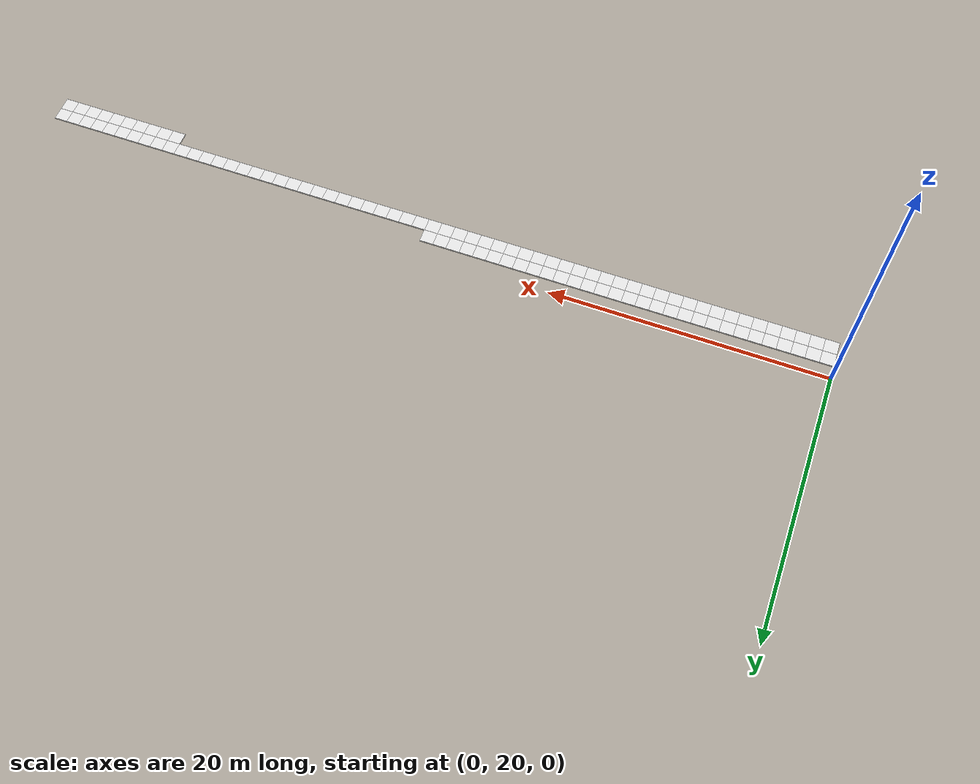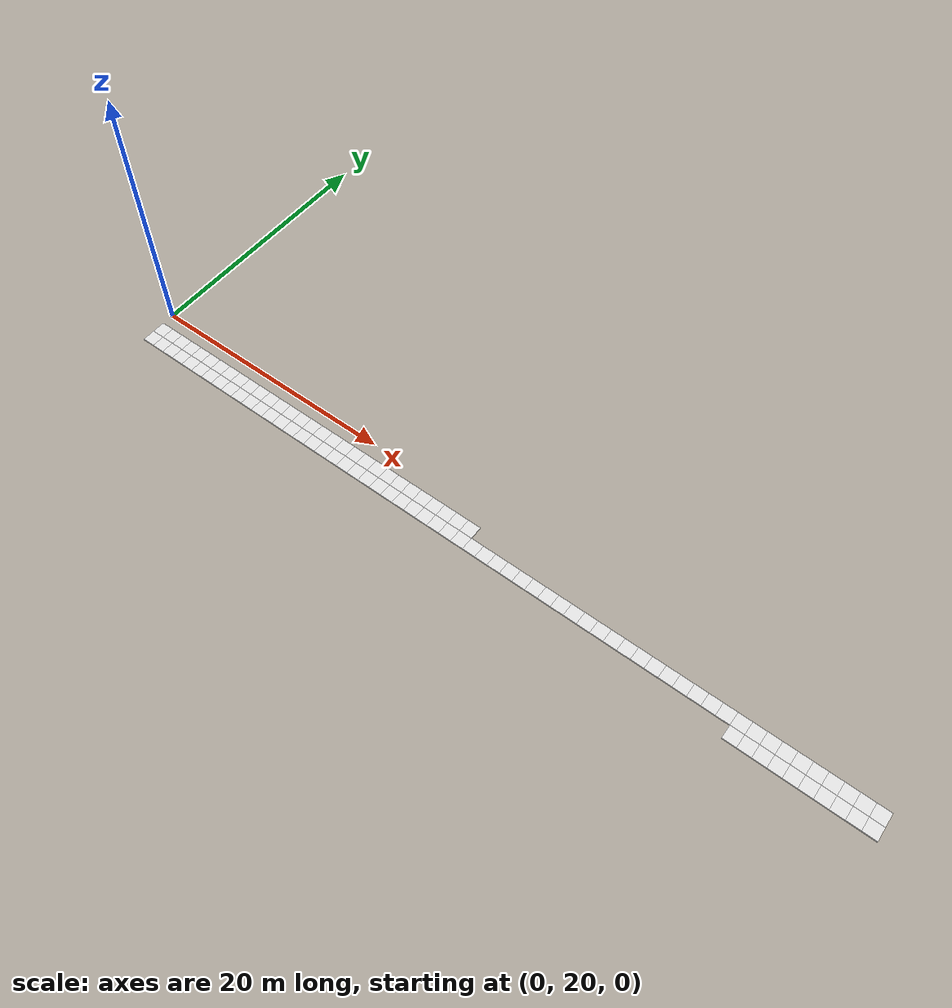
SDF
<sdf version="1.6">
 <world name="grid_world">
  <model name="cell_50_16">
   <static>true</static>
   <link name="link">
    <collision name="collision"><geometry><box><size>1 1 0.1</size></box></geometry></collision>
    <visual name="visual">
     <geometry><box><size>1 1 0.1</size></box></geometry>
     <material>
      <script><uri>file://media/materials/scripts/gazebo.material</uri><name>Gazebo/White</name></script>
     </material>
    </visual>
    <pose>50.5 16.5 0.05 0 0 0</pose>
   </link>
  </model>
  <model name="cell_51_16">
   <static>true</static>
   <link name="link">
    <collision name="collision"><geometry><box><size>1 1 0.1</size></box></geometry></collision>
    <visual name="visual">
     <geometry><box><size>1 1 0.1</size></box></geometry>
     <material>
      <script><uri>file://media/materials/scripts/gazebo.material</uri><name>Gazebo/White</name></script>
     </material>
    </visual>
    <pose>51.5 16.5 0.05 0 0 0</pose>
   </link>
  </model>
  <model name="cell_52_16">
   <static>true</static>
   <link name="link">
    <collision name="collision"><geometry><box><size>1 1 0.1</size></box></geometry></collision>
    <visual name="visual">
     <geometry><box><size>1 1 0.1</size></box></geometry>
     <material>
      <script><uri>file://media/materials/scripts/gazebo.material</uri><name>Gazebo/White</name></script>
     </material>
    </visual>
    <pose>52.5 16.5 0.05 0 0 0</pose>
   </link>
  </model>
  <model name="cell_53_16">
   <static>true</static>
   <link name="link">
    <collision name="collision"><geometry><box><size>1 1 0.1</size></box></geometry></collision>
    <visual name="visual">
     <geometry><box><size>1 1 0.1</size></box></geometry>
     <material>
      <script><uri>file://media/materials/scripts/gazebo.material</uri><name>Gazebo/White</name></script>
     </material>
    </visual>
    <pose>53.5 16.5 0.05 0 0 0</pose>
   </link>
  </model>
  <model name="cell_54_16">
   <static>true</static>
   <link name="link">
    <collision name="collision"><geometry><box><size>1 1 0.1</size></box></geometry></collision>
    <visual name="visual">
     <geometry><box><size>1 1 0.1</size></box></geometry>
     <material>
      <script><uri>file://media/materials/scripts/gazebo.material</uri><name>Gazebo/White</name></script>
     </material>
    </visual>
    <pose>54.5 16.5 0.05 0 0 0</pose>
   </link>
  </model>
  <model name="cell_55_16">
   <static>true</static>
   <link name="link">
    <collision name="collision"><geometry><box><size>1 1 0.1</size></box></geometry></collision>
    <visual name="visual">
     <geometry><box><size>1 1 0.1</size></box></geometry>
     <material>
      <script><uri>file://media/materials/scripts/gazebo.material</uri><name>Gazebo/White</name></script>
     </material>
    </visual>
    <pose>55.5 16.5 0.05 0 0 0</pose>
   </link>
  </model>
  <model name="cell_56_16">
   <static>true</static>
   <link name="link">
    <collision name="collision"><geometry><box><size>1 1 0.1</size></box></geometry></collision>
    <visual name="visual">
     <geometry><box><size>1 1 0.1</size></box></geometry>
     <material>
      <script><uri>file://media/materials/scripts/gazebo.material</uri><name>Gazebo/White</name></script>
     </material>
    </visual>
    <pose>56.5 16.5 0.05 0 0 0</pose>
   </link>
  </model>
  <model name="cell_57_16">
   <static>true</static>
   <link name="link">
    <collision name="collision"><geometry><box><size>1 1 0.1</size></box></geometry></collision>
    <visual name="visual">
     <geometry><box><size>1 1 0.1</size></box></geometry>
     <material>
      <script><uri>file://media/materials/scripts/gazebo.material</uri><name>Gazebo/White</name></script>
     </material>
    </visual>
    <pose>57.5 16.5 0.05 0 0 0</pose>
   </link>
  </model>
  <model name="cell_58_16">
   <static>true</static>
   <link name="link">
    <collision name="collision"><geometry><box><size>1 1 0.1</size></box></geometry></collision>
    <visual name="visual">
     <geometry><box><size>1 1 0.1</size></box></geometry>
     <material>
      <script><uri>file://media/materials/scripts/gazebo.material</uri><name>Gazebo/White</name></script>
     </material>
    </visual>
    <pose>58.5 16.5 0.05 0 0 0</pose>
   </link>
  </model>
  <model name="cell_59_16">
   <static>true</static>
   <link name="link">
    <collision name="collision"><geometry><box><size>1 1 0.1</size></box></geometry></collision>
    <visual name="visual">
     <geometry><box><size>1 1 0.1</size></box></geometry>
     <material>
      <script><uri>file://media/materials/scripts/gazebo.material</uri><name>Gazebo/White</name></script>
     </material>
    </visual>
    <pose>59.5 16.5 0.05 0 0 0</pose>
   </link>
  </model>
  <model name="cell_0_17">
   <static>true</static>
   <link name="link">
    <collision name="collision"><geometry><box><size>1 1 0.1</size></box></geometry></collision>
    <visual name="visual">
     <geometry><box><size>1 1 0.1</size></box></geometry>
     <material>
      <script><uri>file://media/materials/scripts/gazebo.material</uri><name>Gazebo/White</name></script>
     </material>
    </visual>
    <pose>0.5 17.5 0.05 0 0 0</pose>
   </link>
  </model>
  <model name="cell_1_17">
   <static>true</static>
   <link name="link">
    <collision name="collision"><geometry><box><size>1 1 0.1</size></box></geometry></collision>
    <visual name="visual">
     <geometry><box><size>1 1 0.1</size></box></geometry>
     <material>
      <script><uri>file://media/materials/scripts/gazebo.material</uri><name>Gazebo/White</name></script>
     </material>
    </visual>
    <pose>1.5 17.5 0.05 0 0 0</pose>
   </link>
  </model>
  <model name="cell_2_17">
   <static>true</static>
   <link name="link">
    <collision name="collision"><geometry><box><size>1 1 0.1</size></box></geometry></collision>
    <visual name="visual">
     <geometry><box><size>1 1 0.1</size></box></geometry>
     <material>
      <script><uri>file://media/materials/scripts/gazebo.material</uri><name>Gazebo/White</name></script>
     </material>
    </visual>
    <pose>2.5 17.5 0.05 0 0 0</pose>
   </link>
  </model>
  <model name="cell_3_17">
   <static>true</static>
   <link name="link">
    <collision name="collision"><geometry><box><size>1 1 0.1</size></box></geometry></collision>
    <visual name="visual">
     <geometry><box><size>1 1 0.1</size></box></geometry>
     <material>
      <script><uri>file://media/materials/scripts/gazebo.material</uri><name>Gazebo/White</name></script>
     </material>
    </visual>
    <pose>3.5 17.5 0.05 0 0 0</pose>
   </link>
  </model>
  <model name="cell_4_17">
   <static>true</static>
   <link name="link">
    <collision name="collision"><geometry><box><size>1 1 0.1</size></box></geometry></collision>
    <visual name="visual">
     <geometry><box><size>1 1 0.1</size></box></geometry>
     <material>
      <script><uri>file://media/materials/scripts/gazebo.material</uri><name>Gazebo/White</name></script>
     </material>
    </visual>
    <pose>4.5 17.5 0.05 0 0 0</pose>
   </link>
  </model>
  <model name="cell_5_17">
   <static>true</static>
   <link name="link">
    <collision name="collision"><geometry><box><size>1 1 0.1</size></box></geometry></collision>
    <visual name="visual">
     <geometry><box><size>1 1 0.1</size></box></geometry>
     <material>
      <script><uri>file://media/materials/scripts/gazebo.material</uri><name>Gazebo/White</name></script>
     </material>
    </visual>
    <pose>5.5 17.5 0.05 0 0 0</pose>
   </link>
  </model>
  <model name="cell_6_17">
   <static>true</static>
   <link name="link">
    <collision name="collision"><geometry><box><size>1 1 0.1</size></box></geometry></collision>
    <visual name="visual">
     <geometry><box><size>1 1 0.1</size></box></geometry>
     <material>
      <script><uri>file://media/materials/scripts/gazebo.material</uri><name>Gazebo/White</name></script>
     </material>
    </visual>
    <pose>6.5 17.5 0.05 0 0 0</pose>
   </link>
  </model>
  <model name="cell_7_17">
   <static>true</static>
   <link name="link">
    <collision name="collision"><geometry><box><size>1 1 0.1</size></box></geometry></collision>
    <visual name="visual">
     <geometry><box><size>1 1 0.1</size></box></geometry>
     <material>
      <script><uri>file://media/materials/scripts/gazebo.material</uri><name>Gazebo/White</name></script>
     </material>
    </visual>
    <pose>7.5 17.5 0.05 0 0 0</pose>
   </link>
  </model>
  <model name="cell_8_17">
   <static>true</static>
   <link name="link">
    <collision name="collision"><geometry><box><size>1 1 0.1</size></box></geometry></collision>
    <visual name="visual">
     <geometry><box><size>1 1 0.1</size></box></geometry>
     <material>
      <script><uri>file://media/materials/scripts/gazebo.material</uri><name>Gazebo/White</name></script>
     </material>
    </visual>
    <pose>8.5 17.5 0.05 0 0 0</pose>
   </link>
  </model>
  <model name="cell_9_17">
   <static>true</static>
   <link name="link">
    <collision name="collision"><geometry><box><size>1 1 0.1</size></box></geometry></collision>
    <visual name="visual">
     <geometry><box><size>1 1 0.1</size></box></geometry>
     <material>
      <script><uri>file://media/materials/scripts/gazebo.material</uri><name>Gazebo/White</name></script>
     </material>
    </visual>
    <pose>9.5 17.5 0.05 0 0 0</pose>
   </link>
  </model>
  <model name="cell_10_17">
   <static>true</static>
   <link name="link">
    <collision name="collision"><geometry><box><size>1 1 0.1</size></box></geometry></collision>
    <visual name="visual">
     <geometry><box><size>1 1 0.1</size></box></geometry>
     <material>
      <script><uri>file://media/materials/scripts/gazebo.material</uri><name>Gazebo/White</name></script>
     </material>
    </visual>
    <pose>10.5 17.5 0.05 0 0 0</pose>
   </link>
  </model>
  <model name="cell_11_17">
   <static>true</static>
   <link name="link">
    <collision name="collision"><geometry><box><size>1 1 0.1</size></box></geometry></collision>
    <visual name="visual">
     <geometry><box><size>1 1 0.1</size></box></geometry>
     <material>
      <script><uri>file://media/materials/scripts/gazebo.material</uri><name>Gazebo/White</name></script>
     </material>
    </visual>
    <pose>11.5 17.5 0.05 0 0 0</pose>
   </link>
  </model>
  <model name="cell_12_17">
   <static>true</static>
   <link name="link">
    <collision name="collision"><geometry><box><size>1 1 0.1</size></box></geometry></collision>
    <visual name="visual">
     <geometry><box><size>1 1 0.1</size></box></geometry>
     <material>
      <script><uri>file://media/materials/scripts/gazebo.material</uri><name>Gazebo/White</name></script>
     </material>
    </visual>
    <pose>12.5 17.5 0.05 0 0 0</pose>
   </link>
  </model>
  <model name="cell_13_17">
   <static>true</static>
   <link name="link">
    <collision name="collision"><geometry><box><size>1 1 0.1</size></box></geometry></collision>
    <visual name="visual">
     <geometry><box><size>1 1 0.1</size></box></geometry>
     <material>
      <script><uri>file://media/materials/scripts/gazebo.material</uri><name>Gazebo/White</name></script>
     </material>
    </visual>
    <pose>13.5 17.5 0.05 0 0 0</pose>
   </link>
  </model>
  <model name="cell_14_17">
   <static>true</static>
   <link name="link">
    <collision name="collision"><geometry><box><size>1 1 0.1</size></box></geometry></collision>
    <visual name="visual">
     <geometry><box><size>1 1 0.1</size></box></geometry>
     <material>
      <script><uri>file://media/materials/scripts/gazebo.material</uri><name>Gazebo/White</name></script>
     </material>
    </visual>
    <pose>14.5 17.5 0.05 0 0 0</pose>
   </link>
  </model>
  <model name="cell_15_17">
   <static>true</static>
   <link name="link">
    <collision name="collision"><geometry><box><size>1 1 0.1</size></box></geometry></collision>
    <visual name="visual">
     <geometry><box><size>1 1 0.1</size></box></geometry>
     <material>
      <script><uri>file://media/materials/scripts/gazebo.material</uri><name>Gazebo/White</name></script>
     </material>
    </visual>
    <pose>15.5 17.5 0.05 0 0 0</pose>
   </link>
  </model>
  <model name="cell_16_17">
   <static>true</static>
   <link name="link">
    <collision name="collision"><geometry><box><size>1 1 0.1</size></box></geometry></collision>
    <visual name="visual">
     <geometry><box><size>1 1 0.1</size></box></geometry>
     <material>
      <script><uri>file://media/materials/scripts/gazebo.material</uri><name>Gazebo/White</name></script>
     </material>
    </visual>
    <pose>16.5 17.5 0.05 0 0 0</pose>
   </link>
  </model>
  <model name="cell_17_17">
   <static>true</static>
   <link name="link">
    <collision name="collision"><geometry><box><size>1 1 0.1</size></box></geometry></collision>
    <visual name="visual">
     <geometry><box><size>1 1 0.1</size></box></geometry>
     <material>
      <script><uri>file://media/materials/scripts/gazebo.material</uri><name>Gazebo/White</name></script>
     </material>
    </visual>
    <pose>17.5 17.5 0.05 0 0 0</pose>
   </link>
  </model>
  <model name="cell_18_17">
   <static>true</static>
   <link name="link">
    <collision name="collision"><geometry><box><size>1 1 0.1</size></box></geometry></collision>
    <visual name="visual">
     <geometry><box><size>1 1 0.1</size></box></geometry>
     <material>
      <script><uri>file://media/materials/scripts/gazebo.material</uri><name>Gazebo/White</name></script>
     </material>
    </visual>
    <pose>18.5 17.5 0.05 0 0 0</pose>
   </link>
  </model>
  <model name="cell_19_17">
   <static>true</static>
   <link name="link">
    <collision name="collision"><geometry><box><size>1 1 0.1</size></box></geometry></collision>
    <visual name="visual">
     <geometry><box><size>1 1 0.1</size></box></geometry>
     <material>
      <script><uri>file://media/materials/scripts/gazebo.material</uri><name>Gazebo/White</name></script>
     </material>
    </visual>
    <pose>19.5 17.5 0.05 0 0 0</pose>
   </link>
  </model>
  <model name="cell_20_17">
   <static>true</static>
   <link name="link">
    <collision name="collision"><geometry><box><size>1 1 0.1</size></box></geometry></collision>
    <visual name="visual">
     <geometry><box><size>1 1 0.1</size></box></geometry>
     <material>
      <script><uri>file://media/materials/scripts/gazebo.material</uri><name>Gazebo/White</name></script>
     </material>
    </visual>
    <pose>20.5 17.5 0.05 0 0 0</pose>
   </link>
  </model>
  <model name="cell_21_17">
   <static>true</static>
   <link name="link">
    <collision name="collision"><geometry><box><size>1 1 0.1</size></box></geometry></collision>
    <visual name="visual">
     <geometry><box><size>1 1 0.1</size></box></geometry>
     <material>
      <script><uri>file://media/materials/scripts/gazebo.material</uri><name>Gazebo/White</name></script>
     </material>
    </visual>
    <pose>21.5 17.5 0.05 0 0 0</pose>
   </link>
  </model>
  <model name="cell_22_17">
   <static>true</static>
   <link name="link">
    <collision name="collision"><geometry><box><size>1 1 0.1</size></box></geometry></collision>
    <visual name="visual">
     <geometry><box><size>1 1 0.1</size></box></geometry>
     <material>
      <script><uri>file://media/materials/scripts/gazebo.material</uri><name>Gazebo/White</name></script>
     </material>
    </visual>
    <pose>22.5 17.5 0.05 0 0 0</pose>
   </link>
  </model>
  <model name="cell_23_17">
   <static>true</static>
   <link name="link">
    <collision name="collision"><geometry><box><size>1 1 0.1</size></box></geometry></collision>
    <visual name="visual">
     <geometry><box><size>1 1 0.1</size></box></geometry>
     <material>
      <script><uri>file://media/materials/scripts/gazebo.material</uri><name>Gazebo/White</name></script>
     </material>
    </visual>
    <pose>23.5 17.5 0.05 0 0 0</pose>
   </link>
  </model>
  <model name="cell_24_17">
   <static>true</static>
   <link name="link">
    <collision name="collision"><geometry><box><size>1 1 0.1</size></box></geometry></collision>
    <visual name="visual">
     <geometry><box><size>1 1 0.1</size></box></geometry>
     <material>
      <script><uri>file://media/materials/scripts/gazebo.material</uri><name>Gazebo/White</name></script>
     </material>
    </visual>
    <pose>24.5 17.5 0.05 0 0 0</pose>
   </link>
  </model>
  <model name="cell_25_17">
   <static>true</static>
   <link name="link">
    <collision name="collision"><geometry><box><size>1 1 0.1</size></box></geometry></collision>
    <visual name="visual">
     <geometry><box><size>1 1 0.1</size></box></geometry>
     <material>
      <script><uri>file://media/materials/scripts/gazebo.material</uri><name>Gazebo/White</name></script>
     </material>
    </visual>
    <pose>25.5 17.5 0.05 0 0 0</pose>
   </link>
  </model>
  <model name="cell_26_17">
   <static>true</static>
   <link name="link">
    <collision name="collision"><geometry><box><size>1 1 0.1</size></box></geometry></collision>
    <visual name="visual">
     <geometry><box><size>1 1 0.1</size></box></geometry>
     <material>
      <script><uri>file://media/materials/scripts/gazebo.material</uri><name>Gazebo/White</name></script>
     </material>
    </visual>
    <pose>26.5 17.5 0.05 0 0 0</pose>
   </link>
  </model>
  <model name="cell_27_17">
   <static>true</static>
   <link name="link">
    <collision name="collision"><geometry><box><size>1 1 0.1</size></box></geometry></collision>
    <visual name="visual">
     <geometry><box><size>1 1 0.1</size></box></geometry>
     <material>
      <script><uri>file://media/materials/scripts/gazebo.material</uri><name>Gazebo/White</name></script>
     </material>
    </visual>
    <pose>27.5 17.5 0.05 0 0 0</pose>
   </link>
  </model>
  <model name="cell_28_17">
   <static>true</static>
   <link name="link">
    <collision name="collision"><geometry><box><size>1 1 0.1</size></box></geometry></collision>
    <visual name="visual">
     <geometry><box><size>1 1 0.1</size></box></geometry>
     <material>
      <script><uri>file://media/materials/scripts/gazebo.material</uri><name>Gazebo/White</name></script>
     </material>
    </visual>
    <pose>28.5 17.5 0.05 0 0 0</pose>
   </link>
  </model>
  <model name="cell_29_17">
   <static>true</static>
   <link name="link">
    <collision name="collision"><geometry><box><size>1 1 0.1</size></box></geometry></collision>
    <visual name="visual">
     <geometry><box><size>1 1 0.1</size></box></geometry>
     <material>
      <script><uri>file://media/materials/scripts/gazebo.material</uri><name>Gazebo/White</name></script>
     </material>
    </visual>
    <pose>29.5 17.5 0.05 0 0 0</pose>
   </link>
  </model>
  <model name="cell_30_17">
   <static>true</static>
   <link name="link">
    <collision name="collision"><geometry><box><size>1 1 0.1</size></box></geometry></collision>
    <visual name="visual">
     <geometry><box><size>1 1 0.1</size></box></geometry>
     <material>
      <script><uri>file://media/materials/scripts/gazebo.material</uri><name>Gazebo/White</name></script>
     </material>
    </visual>
    <pose>30.5 17.5 0.05 0 0 0</pose>
   </link>
  </model>
  <model name="cell_31_17">
   <static>true</static>
   <link name="link">
    <collision name="collision"><geometry><box><size>1 1 0.1</size></box></geometry></collision>
    <visual name="visual">
     <geometry><box><size>1 1 0.1</size></box></geometry>
     <material>
      <script><uri>file://media/materials/scripts/gazebo.material</uri><name>Gazebo/White</name></script>
     </material>
    </visual>
    <pose>31.5 17.5 0.05 0 0 0</pose>
   </link>
  </model>
  <model name="cell_32_17">
   <static>true</static>
   <link name="link">
    <collision name="collision"><geometry><box><size>1 1 0.1</size></box></geometry></collision>
    <visual name="visual">
     <geometry><box><size>1 1 0.1</size></box></geometry>
     <material>
      <script><uri>file://media/materials/scripts/gazebo.material</uri><name>Gazebo/White</name></script>
     </material>
    </visual>
    <pose>32.5 17.5 0.05 0 0 0</pose>
   </link>
  </model>
  <model name="cell_33_17">
   <static>true</static>
   <link name="link">
    <collision name="collision"><geometry><box><size>1 1 0.1</size></box></geometry></collision>
    <visual name="visual">
     <geometry><box><size>1 1 0.1</size></box></geometry>
     <material>
      <script><uri>file://media/materials/scripts/gazebo.material</uri><name>Gazebo/White</name></script>
     </material>
    </visual>
    <pose>33.5 17.5 0.05 0 0 0</pose>
   </link>
  </model>
  <model name="cell_34_17">
   <static>true</static>
   <link name="link">
    <collision name="collision"><geometry><box><size>1 1 0.1</size></box></geometry></collision>
    <visual name="visual">
     <geometry><box><size>1 1 0.1</size></box></geometry>
     <material>
      <script><uri>file://media/materials/scripts/gazebo.material</uri><name>Gazebo/White</name></script>
     </material>
    </visual>
    <pose>34.5 17.5 0.05 0 0 0</pose>
   </link>
  </model>
  <model name="cell_35_17">
   <static>true</static>
   <link name="link">
    <collision name="collision"><geometry><box><size>1 1 0.1</size></box></geometry></collision>
    <visual name="visual">
     <geometry><box><size>1 1 0.1</size></box></geometry>
     <material>
      <script><uri>file://media/materials/scripts/gazebo.material</uri><name>Gazebo/White</name></script>
     </material>
    </visual>
    <pose>35.5 17.5 0.05 0 0 0</pose>
   </link>
  </model>
  <model name="cell_36_17">
   <static>true</static>
   <link name="link">
    <collision name="collision"><geometry><box><size>1 1 0.1</size></box></geometry></collision>
    <visual name="visual">
     <geometry><box><size>1 1 0.1</size></box></geometry>
     <material>
      <script><uri>file://media/materials/scripts/gazebo.material</uri><name>Gazebo/White</name></script>
     </material>
    </visual>
    <pose>36.5 17.5 0.05 0 0 0</pose>
   </link>
  </model>
  <model name="cell_37_17">
   <static>true</static>
   <link name="link">
    <collision name="collision"><geometry><box><size>1 1 0.1</size></box></geometry></collision>
    <visual name="visual">
     <geometry><box><size>1 1 0.1</size></box></geometry>
     <material>
      <script><uri>file://media/materials/scripts/gazebo.material</uri><name>Gazebo/White</name></script>
     </material>
    </visual>
    <pose>37.5 17.5 0.05 0 0 0</pose>
   </link>
  </model>
  <model name="cell_38_17">
   <static>true</static>
   <link name="link">
    <collision name="collision"><geometry><box><size>1 1 0.1</size></box></geometry></collision>
    <visual name="visual">
     <geometry><box><size>1 1 0.1</size></box></geometry>
     <material>
      <script><uri>file://media/materials/scripts/gazebo.material</uri><name>Gazebo/White</name></script>
     </material>
    </visual>
    <pose>38.5 17.5 0.05 0 0 0</pose>
   </link>
  </model>
  <model name="cell_39_17">
   <static>true</static>
   <link name="link">
    <collision name="collision"><geometry><box><size>1 1 0.1</size></box></geometry></collision>
    <visual name="visual">
     <geometry><box><size>1 1 0.1</size></box></geometry>
     <material>
      <script><uri>file://media/materials/scripts/gazebo.material</uri><name>Gazebo/White</name></script>
     </material>
    </visual>
    <pose>39.5 17.5 0.05 0 0 0</pose>
   </link>
  </model>
  <model name="cell_40_17">
   <static>true</static>
   <link name="link">
    <collision name="collision"><geometry><box><size>1 1 0.1</size></box></geometry></collision>
    <visual name="visual">
     <geometry><box><size>1 1 0.1</size></box></geometry>
     <material>
      <script><uri>file://media/materials/scripts/gazebo.material</uri><name>Gazebo/White</name></script>
     </material>
    </visual>
    <pose>40.5 17.5 0.05 0 0 0</pose>
   </link>
  </model>
  <model name="cell_41_17">
   <static>true</static>
   <link name="link">
    <collision name="collision"><geometry><box><size>1 1 0.1</size></box></geometry></collision>
    <visual name="visual">
     <geometry><box><size>1 1 0.1</size></box></geometry>
     <material>
      <script><uri>file://media/materials/scripts/gazebo.material</uri><name>Gazebo/White</name></script>
     </material>
    </visual>
    <pose>41.5 17.5 0.05 0 0 0</pose>
   </link>
  </model>
  <model name="cell_42_17">
   <static>true</static>
   <link name="link">
    <collision name="collision"><geometry><box><size>1 1 0.1</size></box></geometry></collision>
    <visual name="visual">
     <geometry><box><size>1 1 0.1</size></box></geometry>
     <material>
      <script><uri>file://media/materials/scripts/gazebo.material</uri><name>Gazebo/White</name></script>
     </material>
    </visual>
    <pose>42.5 17.5 0.05 0 0 0</pose>
   </link>
  </model>
  <model name="cell_43_17">
   <static>true</static>
   <link name="link">
    <collision name="collision"><geometry><box><size>1 1 0.1</size></box></geometry></collision>
    <visual name="visual">
     <geometry><box><size>1 1 0.1</size></box></geometry>
     <material>
      <script><uri>file://media/materials/scripts/gazebo.material</uri><name>Gazebo/White</name></script>
     </material>
    </visual>
    <pose>43.5 17.5 0.05 0 0 0</pose>
   </link>
  </model>
  <model name="cell_44_17">
   <static>true</static>
   <link name="link">
    <collision name="collision"><geometry><box><size>1 1 0.1</size></box></geometry></collision>
    <visual name="visual">
     <geometry><box><size>1 1 0.1</size></box></geometry>
     <material>
      <script><uri>file://media/materials/scripts/gazebo.material</uri><name>Gazebo/White</name></script>
     </material>
    </visual>
    <pose>44.5 17.5 0.05 0 0 0</pose>
   </link>
  </model>
  <model name="cell_45_17">
   <static>true</static>
   <link name="link">
    <collision name="collision"><geometry><box><size>1 1 0.1</size></box></geometry></collision>
    <visual name="visual">
     <geometry><box><size>1 1 0.1</size></box></geometry>
     <material>
      <script><uri>file://media/materials/scripts/gazebo.material</uri><name>Gazebo/White</name></script>
     </material>
    </visual>
    <pose>45.5 17.5 0.05 0 0 0</pose>
   </link>
  </model>
  <model name="cell_46_17">
   <static>true</static>
   <link name="link">
    <collision name="collision"><geometry><box><size>1 1 0.1</size></box></geometry></collision>
    <visual name="visual">
     <geometry><box><size>1 1 0.1</size></box></geometry>
     <material>
      <script><uri>file://media/materials/scripts/gazebo.material</uri><name>Gazebo/White</name></script>
     </material>
    </visual>
    <pose>46.5 17.5 0.05 0 0 0</pose>
   </link>
  </model>
  <model name="cell_47_17">
   <static>true</static>
   <link name="link">
    <collision name="collision"><geometry><box><size>1 1 0.1</size></box></geometry></collision>
    <visual name="visual">
     <geometry><box><size>1 1 0.1</size></box></geometry>
     <material>
      <script><uri>file://media/materials/scripts/gazebo.material</uri><name>Gazebo/White</name></script>
     </material>
    </visual>
    <pose>47.5 17.5 0.05 0 0 0</pose>
   </link>
  </model>
  <model name="cell_48_17">
   <static>true</static>
   <link name="link">
    <collision name="collision"><geometry><box><size>1 1 0.1</size></box></geometry></collision>
    <visual name="visual">
     <geometry><box><size>1 1 0.1</size></box></geometry>
     <material>
      <script><uri>file://media/materials/scripts/gazebo.material</uri><name>Gazebo/White</name></script>
     </material>
    </visual>
    <pose>48.5 17.5 0.05 0 0 0</pose>
   </link>
  </model>
  <model name="cell_49_17">
   <static>true</static>
   <link name="link">
    <collision name="collision"><geometry><box><size>1 1 0.1</size></box></geometry></collision>
    <visual name="visual">
     <geometry><box><size>1 1 0.1</size></box></geometry>
     <material>
      <script><uri>file://media/materials/scripts/gazebo.material</uri><name>Gazebo/White</name></script>
     </material>
    </visual>
    <pose>49.5 17.5 0.05 0 0 0</pose>
   </link>
  </model>
  <model name="cell_50_17">
   <static>true</static>
   <link name="link">
    <collision name="collision"><geometry><box><size>1 1 0.1</size></box></geometry></collision>
    <visual name="visual">
     <geometry><box><size>1 1 0.1</size></box></geometry>
     <material>
      <script><uri>file://media/materials/scripts/gazebo.material</uri><name>Gazebo/White</name></script>
     </material>
    </visual>
    <pose>50.5 17.5 0.05 0 0 0</pose>
   </link>
  </model>
  <model name="cell_51_17">
   <static>true</static>
   <link name="link">
    <collision name="collision"><geometry><box><size>1 1 0.1</size></box></geometry></collision>
    <visual name="visual">
     <geometry><box><size>1 1 0.1</size></box></geometry>
     <material>
      <script><uri>file://media/materials/scripts/gazebo.material</uri><name>Gazebo/White</name></script>
     </material>
    </visual>
    <pose>51.5 17.5 0.05 0 0 0</pose>
   </link>
  </model>
  <model name="cell_52_17">
   <static>true</static>
   <link name="link">
    <collision name="collision"><geometry><box><size>1 1 0.1</size></box></geometry></collision>
    <visual name="visual">
     <geometry><box><size>1 1 0.1</size></box></geometry>
     <material>
      <script><uri>file://media/materials/scripts/gazebo.material</uri><name>Gazebo/White</name></script>
     </material>
    </visual>
    <pose>52.5 17.5 0.05 0 0 0</pose>
   </link>
  </model>
  <model name="cell_53_17">
   <static>true</static>
   <link name="link">
    <collision name="collision"><geometry><box><size>1 1 0.1</size></box></geometry></collision>
    <visual name="visual">
     <geometry><box><size>1 1 0.1</size></box></geometry>
     <material>
      <script><uri>file://media/materials/scripts/gazebo.material</uri><name>Gazebo/White</name></script>
     </material>
    </visual>
    <pose>53.5 17.5 0.05 0 0 0</pose>
   </link>
  </model>
  <model name="cell_54_17">
   <static>true</static>
   <link name="link">
    <collision name="collision"><geometry><box><size>1 1 0.1</size></box></geometry></collision>
    <visual name="visual">
     <geometry><box><size>1 1 0.1</size></box></geometry>
     <material>
      <script><uri>file://media/materials/scripts/gazebo.material</uri><name>Gazebo/White</name></script>
     </material>
    </visual>
    <pose>54.5 17.5 0.05 0 0 0</pose>
   </link>
  </model>
  <model name="cell_55_17">
   <static>true</static>
   <link name="link">
    <collision name="collision"><geometry><box><size>1 1 0.1</size></box></geometry></collision>
    <visual name="visual">
     <geometry><box><size>1 1 0.1</size></box></geometry>
     <material>
      <script><uri>file://media/materials/scripts/gazebo.material</uri><name>Gazebo/White</name></script>
     </material>
    </visual>
    <pose>55.5 17.5 0.05 0 0 0</pose>
   </link>
  </model>
  <model name="cell_56_17">
   <static>true</static>
   <link name="link">
    <collision name="collision"><geometry><box><size>1 1 0.1</size></box></geometry></collision>
    <visual name="visual">
     <geometry><box><size>1 1 0.1</size></box></geometry>
     <material>
      <script><uri>file://media/materials/scripts/gazebo.material</uri><name>Gazebo/White</name></script>
     </material>
    </visual>
    <pose>56.5 17.5 0.05 0 0 0</pose>
   </link>
  </model>
  <model name="cell_57_17">
   <static>true</static>
   <link name="link">
    <collision name="collision"><geometry><box><size>1 1 0.1</size></box></geometry></collision>
    <visual name="visual">
     <geometry><box><size>1 1 0.1</size></box></geometry>
     <material>
      <script><uri>file://media/materials/scripts/gazebo.material</uri><name>Gazebo/White</name></script>
     </material>
    </visual>
    <pose>57.5 17.5 0.05 0 0 0</pose>
   </link>
  </model>
  <model name="cell_58_17">
   <static>true</static>
   <link name="link">
    <collision name="collision"><geometry><box><size>1 1 0.1</size></box></geometry></collision>
    <visual name="visual">
     <geometry><box><size>1 1 0.1</size></box></geometry>
     <material>
      <script><uri>file://media/materials/scripts/gazebo.material</uri><name>Gazebo/White</name></script>
     </material>
    </visual>
    <pose>58.5 17.5 0.05 0 0 0</pose>
   </link>
  </model>
  <model name="cell_59_17">
   <static>true</static>
   <link name="link">
    <collision name="collision"><geometry><box><size>1 1 0.1</size></box></geometry></collision>
    <visual name="visual">
     <geometry><box><size>1 1 0.1</size></box></geometry>
     <material>
      <script><uri>file://media/materials/scripts/gazebo.material</uri><name>Gazebo/White</name></script>
     </material>
    </visual>
    <pose>59.5 17.5 0.05 0 0 0</pose>
   </link>
  </model>
  <model name="cell_0_18">
   <static>true</static>
   <link name="link">
    <collision name="collision"><geometry><box><size>1 1 0.1</size></box></geometry></collision>
    <visual name="visual">
     <geometry><box><size>1 1 0.1</size></box></geometry>
     <material>
      <script><uri>file://media/materials/scripts/gazebo.material</uri><name>Gazebo/White</name></script>
     </material>
    </visual>
    <pose>0.5 18.5 0.05 0 0 0</pose>
   </link>
  </model>
  <model name="cell_1_18">
   <static>true</static>
   <link name="link">
    <collision name="collision"><geometry><box><size>1 1 0.1</size></box></geometry></collision>
    <visual name="visual">
     <geometry><box><size>1 1 0.1</size></box></geometry>
     <material>
      <script><uri>file://media/materials/scripts/gazebo.material</uri><name>Gazebo/White</name></script>
     </material>
    </visual>
    <pose>1.5 18.5 0.05 0 0 0</pose>
   </link>
  </model>
  <model name="cell_2_18">
   <static>true</static>
   <link name="link">
    <collision name="collision"><geometry><box><size>1 1 0.1</size></box></geometry></collision>
    <visual name="visual">
     <geometry><box><size>1 1 0.1</size></box></geometry>
     <material>
      <script><uri>file://media/materials/scripts/gazebo.material</uri><name>Gazebo/White</name></script>
     </material>
    </visual>
    <pose>2.5 18.5 0.05 0 0 0</pose>
   </link>
  </model>
  <model name="cell_3_18">
   <static>true</static>
   <link name="link">
    <collision name="collision"><geometry><box><size>1 1 0.1</size></box></geometry></collision>
    <visual name="visual">
     <geometry><box><size>1 1 0.1</size></box></geometry>
     <material>
      <script><uri>file://media/materials/scripts/gazebo.material</uri><name>Gazebo/White</name></script>
     </material>
    </visual>
    <pose>3.5 18.5 0.05 0 0 0</pose>
   </link>
  </model>
  <model name="cell_4_18">
   <static>true</static>
   <link name="link">
    <collision name="collision"><geometry><box><size>1 1 0.1</size></box></geometry></collision>
    <visual name="visual">
     <geometry><box><size>1 1 0.1</size></box></geometry>
     <material>
      <script><uri>file://media/materials/scripts/gazebo.material</uri><name>Gazebo/White</name></script>
     </material>
    </visual>
    <pose>4.5 18.5 0.05 0 0 0</pose>
   </link>
  </model>
  <model name="cell_5_18">
   <static>true</static>
   <link name="link">
    <collision name="collision"><geometry><box><size>1 1 0.1</size></box></geometry></collision>
    <visual name="visual">
     <geometry><box><size>1 1 0.1</size></box></geometry>
     <material>
      <script><uri>file://media/materials/scripts/gazebo.material</uri><name>Gazebo/White</name></script>
     </material>
    </visual>
    <pose>5.5 18.5 0.05 0 0 0</pose>
   </link>
  </model>
  <model name="cell_6_18">
   <static>true</static>
   <link name="link">
    <collision name="collision"><geometry><box><size>1 1 0.1</size></box></geometry></collision>
    <visual name="visual">
     <geometry><box><size>1 1 0.1</size></box></geometry>
     <material>
      <script><uri>file://media/materials/scripts/gazebo.material</uri><name>Gazebo/White</name></script>
     </material>
    </visual>
    <pose>6.5 18.5 0.05 0 0 0</pose>
   </link>
  </model>
  <model name="cell_7_18">
   <static>true</static>
   <link name="link">
    <collision name="collision"><geometry><box><size>1 1 0.1</size></box></geometry></collision>
    <visual name="visual">
     <geometry><box><size>1 1 0.1</size></box></geometry>
     <material>
      <script><uri>file://media/materials/scripts/gazebo.material</uri><name>Gazebo/White</name></script>
     </material>
    </visual>
    <pose>7.5 18.5 0.05 0 0 0</pose>
   </link>
  </model>
  <model name="cell_8_18">
   <static>true</static>
   <link name="link">
    <collision name="collision"><geometry><box><size>1 1 0.1</size></box></geometry></collision>
    <visual name="visual">
     <geometry><box><size>1 1 0.1</size></box></geometry>
     <material>
      <script><uri>file://media/materials/scripts/gazebo.material</uri><name>Gazebo/White</name></script>
     </material>
    </visual>
    <pose>8.5 18.5 0.05 0 0 0</pose>
   </link>
  </model>
  <model name="cell_9_18">
   <static>true</static>
   <link name="link">
    <collision name="collision"><geometry><box><size>1 1 0.1</size></box></geometry></collision>
    <visual name="visual">
     <geometry><box><size>1 1 0.1</size></box></geometry>
     <material>
      <script><uri>file://media/materials/scripts/gazebo.material</uri><name>Gazebo/White</name></script>
     </material>
    </visual>
    <pose>9.5 18.5 0.05 0 0 0</pose>
   </link>
  </model>
  <model name="cell_10_18">
   <static>true</static>
   <link name="link">
    <collision name="collision"><geometry><box><size>1 1 0.1</size></box></geometry></collision>
    <visual name="visual">
     <geometry><box><size>1 1 0.1</size></box></geometry>
     <material>
      <script><uri>file://media/materials/scripts/gazebo.material</uri><name>Gazebo/White</name></script>
     </material>
    </visual>
    <pose>10.5 18.5 0.05 0 0 0</pose>
   </link>
  </model>
  <model name="cell_11_18">
   <static>true</static>
   <link name="link">
    <collision name="collision"><geometry><box><size>1 1 0.1</size></box></geometry></collision>
    <visual name="visual">
     <geometry><box><size>1 1 0.1</size></box></geometry>
     <material>
      <script><uri>file://media/materials/scripts/gazebo.material</uri><name>Gazebo/White</name></script>
     </material>
    </visual>
    <pose>11.5 18.5 0.05 0 0 0</pose>
   </link>
  </model>
  <model name="cell_12_18">
   <static>true</static>
   <link name="link">
    <collision name="collision"><geometry><box><size>1 1 0.1</size></box></geometry></collision>
    <visual name="visual">
     <geometry><box><size>1 1 0.1</size></box></geometry>
     <material>
      <script><uri>file://media/materials/scripts/gazebo.material</uri><name>Gazebo/White</name></script>
     </material>
    </visual>
    <pose>12.5 18.5 0.05 0 0 0</pose>
   </link>
  </model>
  <model name="cell_13_18">
   <static>true</static>
   <link name="link">
    <collision name="collision"><geometry><box><size>1 1 0.1</size></box></geometry></collision>
    <visual name="visual">
     <geometry><box><size>1 1 0.1</size></box></geometry>
     <material>
      <script><uri>file://media/materials/scripts/gazebo.material</uri><name>Gazebo/White</name></script>
     </material>
    </visual>
    <pose>13.5 18.5 0.05 0 0 0</pose>
   </link>
  </model>
  <model name="cell_14_18">
   <static>true</static>
   <link name="link">
    <collision name="collision"><geometry><box><size>1 1 0.1</size></box></geometry></collision>
    <visual name="visual">
     <geometry><box><size>1 1 0.1</size></box></geometry>
     <material>
      <script><uri>file://media/materials/scripts/gazebo.material</uri><name>Gazebo/White</name></script>
     </material>
    </visual>
    <pose>14.5 18.5 0.05 0 0 0</pose>
   </link>
  </model>
  <model name="cell_15_18">
   <static>true</static>
   <link name="link">
    <collision name="collision"><geometry><box><size>1 1 0.1</size></box></geometry></collision>
    <visual name="visual">
     <geometry><box><size>1 1 0.1</size></box></geometry>
     <material>
      <script><uri>file://media/materials/scripts/gazebo.material</uri><name>Gazebo/White</name></script>
     </material>
    </visual>
    <pose>15.5 18.5 0.05 0 0 0</pose>
   </link>
  </model>
  <model name="cell_16_18">
   <static>true</static>
   <link name="link">
    <collision name="collision"><geometry><box><size>1 1 0.1</size></box></geometry></collision>
    <visual name="visual">
     <geometry><box><size>1 1 0.1</size></box></geometry>
     <material>
      <script><uri>file://media/materials/scripts/gazebo.material</uri><name>Gazebo/White</name></script>
     </material>
    </visual>
    <pose>16.5 18.5 0.05 0 0 0</pose>
   </link>
  </model>
  <model name="cell_17_18">
   <static>true</static>
   <link name="link">
    <collision name="collision"><geometry><box><size>1 1 0.1</size></box></geometry></collision>
    <visual name="visual">
     <geometry><box><size>1 1 0.1</size></box></geometry>
     <material>
      <script><uri>file://media/materials/scripts/gazebo.material</uri><name>Gazebo/White</name></script>
     </material>
    </visual>
    <pose>17.5 18.5 0.05 0 0 0</pose>
   </link>
  </model>
  <model name="cell_18_18">
   <static>true</static>
   <link name="link">
    <collision name="collision"><geometry><box><size>1 1 0.1</size></box></geometry></collision>
    <visual name="visual">
     <geometry><box><size>1 1 0.1</size></box></geometry>
     <material>
      <script><uri>file://media/materials/scripts/gazebo.material</uri><name>Gazebo/White</name></script>
     </material>
    </visual>
    <pose>18.5 18.5 0.05 0 0 0</pose>
   </link>
  </model>
  <model name="cell_19_18">
   <static>true</static>
   <link name="link">
    <collision name="collision"><geometry><box><size>1 1 0.1</size></box></geometry></collision>
    <visual name="visual">
     <geometry><box><size>1 1 0.1</size></box></geometry>
     <material>
      <script><uri>file://media/materials/scripts/gazebo.material</uri><name>Gazebo/White</name></script>
     </material>
    </visual>
    <pose>19.5 18.5 0.05 0 0 0</pose>
   </link>
  </model>
  <model name="cell_20_18">
   <static>true</static>
   <link name="link">
    <collision name="collision"><geometry><box><size>1 1 0.1</size></box></geometry></collision>
    <visual name="visual">
     <geometry><box><size>1 1 0.1</size></box></geometry>
     <material>
      <script><uri>file://media/materials/scripts/gazebo.material</uri><name>Gazebo/White</name></script>
     </material>
    </visual>
    <pose>20.5 18.5 0.05 0 0 0</pose>
   </link>
  </model>
  <model name="cell_21_18">
   <static>true</static>
   <link name="link">
    <collision name="collision"><geometry><box><size>1 1 0.1</size></box></geometry></collision>
    <visual name="visual">
     <geometry><box><size>1 1 0.1</size></box></geometry>
     <material>
      <script><uri>file://media/materials/scripts/gazebo.material</uri><name>Gazebo/White</name></script>
     </material>
    </visual>
    <pose>21.5 18.5 0.05 0 0 0</pose>
   </link>
  </model>
  <model name="cell_22_18">
   <static>true</static>
   <link name="link">
    <collision name="collision"><geometry><box><size>1 1 0.1</size></box></geometry></collision>
    <visual name="visual">
     <geometry><box><size>1 1 0.1</size></box></geometry>
     <material>
      <script><uri>file://media/materials/scripts/gazebo.material</uri><name>Gazebo/White</name></script>
     </material>
    </visual>
    <pose>22.5 18.5 0.05 0 0 0</pose>
   </link>
  </model>
  <model name="cell_23_18">
   <static>true</static>
   <link name="link">
    <collision name="collision"><geometry><box><size>1 1 0.1</size></box></geometry></collision>
    <visual name="visual">
     <geometry><box><size>1 1 0.1</size></box></geometry>
     <material>
      <script><uri>file://media/materials/scripts/gazebo.material</uri><name>Gazebo/White</name></script>
     </material>
    </visual>
    <pose>23.5 18.5 0.05 0 0 0</pose>
   </link>
  </model>
  <model name="cell_24_18">
   <static>true</static>
   <link name="link">
    <collision name="collision"><geometry><box><size>1 1 0.1</size></box></geometry></collision>
    <visual name="visual">
     <geometry><box><size>1 1 0.1</size></box></geometry>
     <material>
      <script><uri>file://media/materials/scripts/gazebo.material</uri><name>Gazebo/White</name></script>
     </material>
    </visual>
    <pose>24.5 18.5 0.05 0 0 0</pose>
   </link>
  </model>
  <model name="cell_25_18">
   <static>true</static>
   <link name="link">
    <collision name="collision"><geometry><box><size>1 1 0.1</size></box></geometry></collision>
    <visual name="visual">
     <geometry><box><size>1 1 0.1</size></box></geometry>
     <material>
      <script><uri>file://media/materials/scripts/gazebo.material</uri><name>Gazebo/White</name></script>
     </material>
    </visual>
    <pose>25.5 18.5 0.05 0 0 0</pose>
   </link>
  </model>
  <model name="cell_26_18">
   <static>true</static>
   <link name="link">
    <collision name="collision"><geometry><box><size>1 1 0.1</size></box></geometry></collision>
    <visual name="visual">
     <geometry><box><size>1 1 0.1</size></box></geometry>
     <material>
      <script><uri>file://media/materials/scripts/gazebo.material</uri><name>Gazebo/White</name></script>
     </material>
    </visual>
    <pose>26.5 18.5 0.05 0 0 0</pose>
   </link>
  </model>
  <model name="cell_27_18">
   <static>true</static>
   <link name="link">
    <collision name="collision"><geometry><box><size>1 1 0.1</size></box></geometry></collision>
    <visual name="visual">
     <geometry><box><size>1 1 0.1</size></box></geometry>
     <material>
      <script><uri>file://media/materials/scripts/gazebo.material</uri><name>Gazebo/White</name></script>
     </material>
    </visual>
    <pose>27.5 18.5 0.05 0 0 0</pose>
   </link>
  </model>
  <model name="cell_28_18">
   <static>true</static>
   <link name="link">
    <collision name="collision"><geometry><box><size>1 1 0.1</size></box></geometry></collision>
    <visual name="visual">
     <geometry><box><size>1 1 0.1</size></box></geometry>
     <material>
      <script><uri>file://media/materials/scripts/gazebo.material</uri><name>Gazebo/White</name></script>
     </material>
    </visual>
    <pose>28.5 18.5 0.05 0 0 0</pose>
   </link>
  </model>
  <model name="cell_29_18">
   <static>true</static>
   <link name="link">
    <collision name="collision"><geometry><box><size>1 1 0.1</size></box></geometry></collision>
    <visual name="visual">
     <geometry><box><size>1 1 0.1</size></box></geometry>
     <material>
      <script><uri>file://media/materials/scripts/gazebo.material</uri><name>Gazebo/White</name></script>
     </material>
    </visual>
    <pose>29.5 18.5 0.05 0 0 0</pose>
   </link>
  </model>
 </world>
</sdf>
